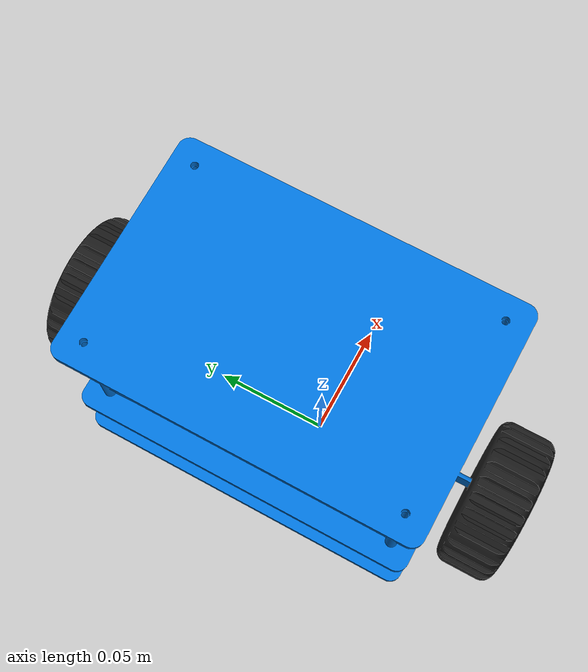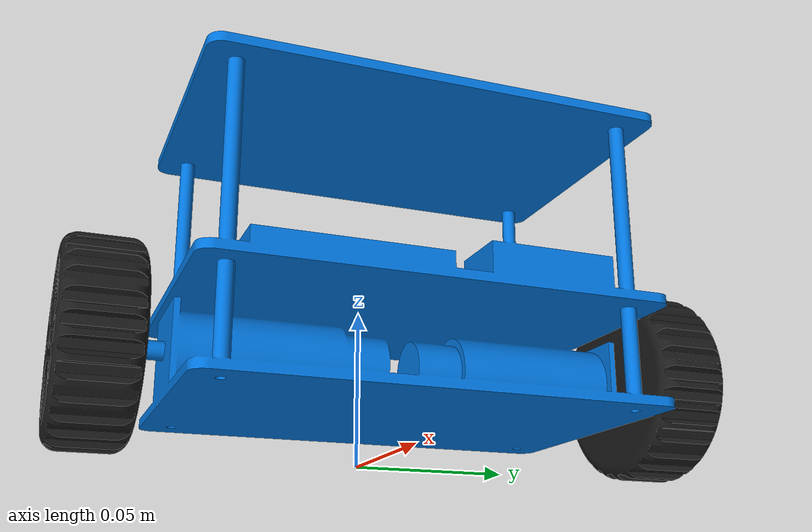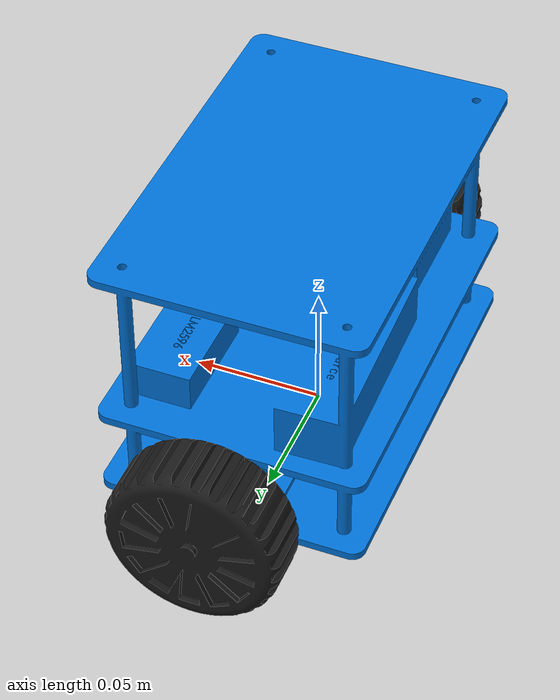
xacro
<?xml version="1.0"?>
<robot xmlns:xacro="http://www.ros.org/wiki/xacro" name="balance_bot">

  <!-- ==================== GLOBAL MATERIALS ==================== -->
  <material name="chassis_blue">
    <color rgba="0.0 0.45 0.85 1.0" />
  </material>

  <material name="wheel_dark">
    <color rgba="0.1 0.1 0.1 1.0" />
  </material>

  <!-- ==================== BASE FOOTPRINT ==================== -->
  <link name="base_footprint"/>

  <joint name="base_footprint_joint" type="fixed">
    <parent link="base_footprint"/>
    <child link="base_link"/>
    <origin xyz="0 0 0.032" rpy="0 0 0"/>
  </joint>

  <!-- ==================== MAIN CHASSIS ==================== -->
  <link name="base_link">
    <inertial>
      <origin xyz="0 0 0.08" rpy="0 0 0" />
      <mass value="0.8" />
      <inertia ixx="0.002" ixy="0.0" ixz="0.0" iyy="0.002" iyz="0.0" izz="0.001" />
    </inertial>
    <visual>
      <origin xyz="-1.3192 -0.6987 -0.9024" rpy="0 0 1.5708" />
      <geometry>
        <mesh filename="package://self_balancing_robot/meshes/base_link.STL"/>
      </geometry>
      <material name="chassis_blue"/>
    </visual>
    <collision>
      <origin xyz="0 0 0.08" rpy="0 0 0" />
      <geometry>
        <box size="0.10 0.14 0.20" />
      </geometry>
    </collision>
  </link>

  <!-- ==================== LEFT WHEEL ==================== -->
  <link name="left_wheel_link">
    <inertial>
      <origin xyz="0 0 0" rpy="0 0 0" />
      <mass value="0.1" />
      <inertia ixx="0.00003" ixy="0.0" ixz="0.0" iyy="0.00003" iyz="0.0" izz="0.00005" />
    </inertial>
    <visual>
      <origin xyz="0 0 0" rpy="0 0 0" />
      <geometry>
        <mesh filename="package://self_balancing_robot/meshes/left_wheel_link.STL"/>
      </geometry>
      <material name="wheel_dark"/>
    </visual>
    <collision>
      <origin xyz="0 0 0" rpy="0 0 0" />
      <geometry>
        <cylinder radius="0.032" length="0.02" />
      </geometry>
    </collision>
  </link>

  <!-- Original SolidWorks joint origin restored -->
  <joint name="left_wheel_joint" type="continuous">
    <origin xyz="0 0.092 0" rpy="-1.5708 0 0" />
    <parent link="base_link" />
    <child link="left_wheel_link" />
    <axis xyz="0 0 1" />
    <dynamics damping="0.01" friction="0.01"/>
  </joint>

  <!-- ==================== RIGHT WHEEL ==================== -->
  <link name="right_wheel_link">
    <inertial>
      <origin xyz="0 0 0" rpy="0 0 0" />
      <mass value="0.1" />
      <inertia ixx="0.00003" ixy="0.0" ixz="0.0" iyy="0.00003" iyz="0.0" izz="0.00005" />
    </inertial>
    <visual>
      <origin xyz="0 0 0" rpy="0 3.14159 0" />
      <geometry>
        <mesh filename="package://self_balancing_robot/meshes/right_wheel_link.STL"/>
      </geometry>
      <material name="wheel_dark"/>
    </visual>
    <collision>
      <origin xyz="0 0 0" rpy="0 0 0" />
      <geometry>
        <cylinder radius="0.032" length="0.02" />
      </geometry>
    </collision>
  </link>

  <!-- Original SolidWorks joint origin restored -->
  <joint name="right_wheel_joint" type="continuous">
    <origin xyz="0 -0.068 0" rpy="-1.5708 0 0" />
    <parent link="base_link" />
    <child link="right_wheel_link" />
    <axis xyz="0 0 1" />
    <dynamics damping="0.01" friction="0.01"/>
  </joint>

  <!-- ==================== IMU LINK ==================== -->
  <link name="imu_link"/>
  <joint name="imu_joint" type="fixed">
    <parent link="base_link"/>
    <child link="imu_link"/>
    <origin xyz="0 0 0.08" rpy="0 0 0"/>
  </joint>

  <!-- ==================== GAZEBO MATERIAL & FRICTION ==================== -->
  <gazebo reference="base_link">
    <material>
      <ambient>0.0 0.45 0.85 1.0</ambient>
      <diffuse>0.0 0.45 0.85 1.0</diffuse>
      <specular>0.4 0.4 0.4 1.0</specular>
    </material>
  </gazebo>

  <gazebo reference="left_wheel_link">
    <mu1>2.0</mu1>
    <mu2>2.0</mu2>
    <kp>1000000.0</kp>
    <kd>10.0</kd>
    <minDepth>0.001</minDepth>
    <material>
      <ambient>0.1 0.1 0.1 1.0</ambient>
      <diffuse>0.1 0.1 0.1 1.0</diffuse>
      <specular>0.2 0.2 0.2 1.0</specular>
    </material>
  </gazebo>

  <gazebo reference="right_wheel_link">
    <mu1>2.0</mu1>
    <mu2>2.0</mu2>
    <kp>1000000.0</kp>
    <kd>10.0</kd>
    <minDepth>0.001</minDepth>
    <material>
      <ambient>0.1 0.1 0.1 1.0</ambient>
      <diffuse>0.1 0.1 0.1 1.0</diffuse>
      <specular>0.2 0.2 0.2 1.0</specular>
    </material>
  </gazebo>

  <!-- ==================== IGNITION / GAZEBO PLUGINS ==================== -->
  <gazebo reference="imu_link">
    <sensor name="imu_sensor" type="imu">
      <always_on>1</always_on>
      <update_rate>100</update_rate>
      <visualize>true</visualize>
      <topic>imu</topic>
    </sensor>
  </gazebo>

  <gazebo>
    <plugin filename="ignition-gazebo-imu-system" name="ignition::gazebo::systems::Imu"/>
    <plugin filename="ignition-gazebo-diff-drive-system" name="ignition::gazebo::systems::DiffDrive">
      <left_joint>left_wheel_joint</left_joint>
      <right_joint>right_wheel_joint</right_joint>
      <wheel_separation>0.160</wheel_separation>
      <wheel_radius>0.032</wheel_radius>
      <odom_publish_frequency>50</odom_publish_frequency>
      <topic>/cmd_vel</topic>
      <odom_topic>/odom</odom_topic>
      <tf_topic>/tf</tf_topic>
      <frame_id>odom</frame_id>
      <child_frame_id>base_footprint</child_frame_id>
    </plugin>
  </gazebo>

</robot>
